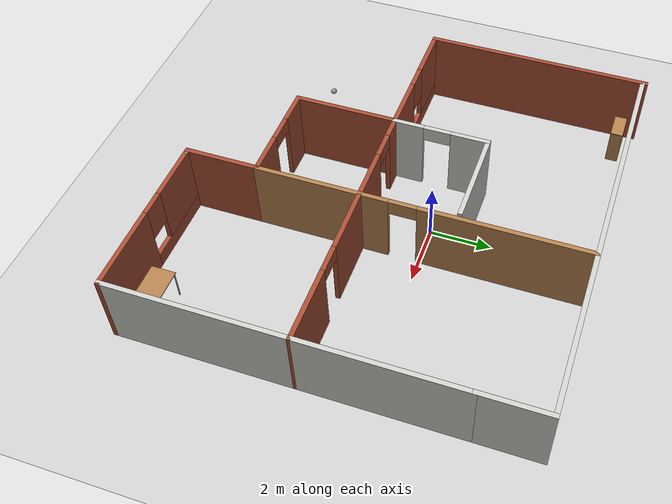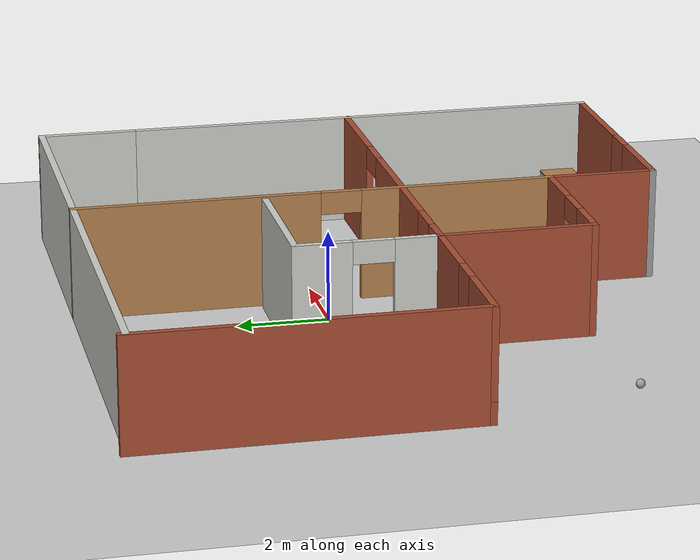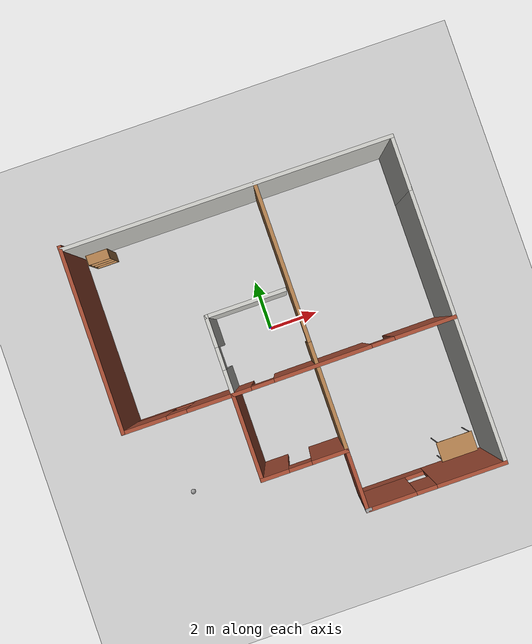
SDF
<sdf version="1.6">
 <world name="default">
  <model name="ground_plane">
   <static>1</static>
   <link name="link">
    <collision name="collision">
     <geometry><plane><normal>0 0 1</normal><size>100 100</size></plane></geometry>
     <surface>
      <contact><collide_bitmask>65535</collide_bitmask></contact>
      <friction><ode><mu>100</mu><mu2>50</mu2></ode></friction>
     </surface>
    </collision>
    <visual name="visual">
     <cast_shadows>0</cast_shadows>
     <geometry><plane><normal>0 0 1</normal><size>100 100</size></plane></geometry>
     <material>
      <script><uri>file://media/materials/scripts/gazebo.material</uri><name>Gazebo/Grey</name></script>
     </material>
    </visual>
   </link>
  </model>
  <model name="Building">
   <pose>0.114366 -1.10553 0 0 -0 0</pose>
   <link name="Wall_0">
    <collision name="Wall_0_Collision">
     <geometry><box><size>13.25 0.15 2.5</size></box></geometry>
     <pose>0 0 1.25 0 -0 0</pose>
    </collision>
    <visual name="Wall_0_Visual">
     <pose>0 0 1.25 0 -0 0</pose>
     <geometry><box><size>13.25 0.15 2.5</size></box></geometry>
     <material>
      <script><uri>file://media/materials/scripts/gazebo.material</uri><name>Gazebo/CeilingTiled</name></script>
      <ambient>0.435294 0.796078 0.67451 1</ambient>
     </material>
     <meta><layer>0</layer></meta>
    </visual>
    <pose>0.024727 6.425 0 0 -0 0</pose>
   </link>
   <link name="Wall_1">
    <collision name="Wall_1_Collision">
     <geometry><box><size>2.25 0.15 2.5</size></box></geometry>
     <pose>0 0 1.25 0 -0 0</pose>
    </collision>
    <visual name="Wall_1_Visual">
     <pose>0 0 1.25 0 -0 0</pose>
     <geometry><box><size>2.25 0.15 2.5</size></box></geometry>
     <material>
      <script><uri>file://media/materials/scripts/gazebo.material</uri><name>Gazebo/CeilingTiled</name></script>
      <ambient>0.760784 0.662745 0.627451 1</ambient>
     </material>
     <meta><layer>0</layer></meta>
    </visual>
    <pose>6.57473 5.375 0 0 0 -1.5708</pose>
   </link>
   <link name="Wall_11">
    <pose>2.17478 -0.799463 0 0 0 -3.13579</pose>
    <visual name="Wall_11_Visual_0">
     <pose>-3.24354 0 1.25 0 -0 0</pose>
     <geometry><box><size>2.46318 0.15 2.5</size></box></geometry>
     <material>
      <script><uri>file://media/materials/scripts/gazebo.material</uri><name>Gazebo/Bricks</name></script>
      <ambient>1 1 1 1</ambient>
     </material>
     <meta><layer>0</layer></meta>
    </visual>
    <collision name="Wall_11_Collision_0">
     <geometry><box><size>2.46318 0.15 2.5</size></box></geometry>
     <pose>-3.24354 0 1.25 0 -0 0</pose>
    </collision>
    <visual name="Wall_11_Visual_1">
     <pose>0.828788 0 1.25 0 -0 0</pose>
     <geometry><box><size>3.88147 0.15 2.5</size></box></geometry>
     <material>
      <script><uri>file://media/materials/scripts/gazebo.material</uri><name>Gazebo/Bricks</name></script>
      <ambient>1 1 1 1</ambient>
     </material>
     <meta><layer>0</layer></meta>
    </visual>
    <collision name="Wall_11_Collision_1">
     <geometry><box><size>3.88147 0.15 2.5</size></box></geometry>
     <pose>0.828788 0 1.25 0 -0 0</pose>
    </collision>
    <visual name="Wall_11_Visual_2">
     <pose>4.07233 0 1.25 0 -0 0</pose>
     <geometry><box><size>0.805607 0.15 2.5</size></box></geometry>
     <material>
      <script><uri>file://media/materials/scripts/gazebo.material</uri><name>Gazebo/Bricks</name></script>
      <ambient>1 1 1 1</ambient>
     </material>
     <meta><layer>0</layer></meta>
    </visual>
    <collision name="Wall_11_Collision_2">
     <geometry><box><size>0.805607 0.15 2.5</size></box></geometry>
     <pose>4.07233 0 1.25 0 -0 0</pose>
    </collision>
    <visual name="Wall_11_Visual_3">
     <pose>-1.56195 0 2.25 0 -0 0</pose>
     <geometry><box><size>0.9 0.15 0.5</size></box></geometry>
     <material>
      <script><uri>file://media/materials/scripts/gazebo.material</uri><name>Gazebo/Bricks</name></script>
      <ambient>1 1 1 1</ambient>
     </material>
     <meta><layer>0</layer></meta>
    </visual>
    <collision name="Wall_11_Collision_3">
     <geometry><box><size>0.9 0.15 0.5</size></box></geometry>
     <pose>-1.56195 0 2.25 0 -0 0</pose>
    </collision>
    <visual name="Wall_11_Visual_4">
     <pose>3.21952 0 2.25 0 -0 0</pose>
     <geometry><box><size>0.9 0.15 0.5</size></box></geometry>
     <material>
      <script><uri>file://media/materials/scripts/gazebo.material</uri><name>Gazebo/Bricks</name></script>
      <ambient>1 1 1 1</ambient>
     </material>
     <meta><layer>0</layer></meta>
    </visual>
    <collision name="Wall_11_Collision_4">
     <geometry><box><size>0.9 0.15 0.5</size></box></geometry>
     <pose>3.21952 0 2.25 0 -0 0</pose>
    </collision>
   </link>
   <link name="Wall_12">
    <pose>-2.22527 0.725 0 0 -0 1.5708</pose>
    <visual name="Wall_12_Visual_0">
     <pose>-1.09587 0 1.25 0 -0 0</pose>
     <geometry><box><size>1.05826 0.15 2.5</size></box></geometry>
     <material>
      <script><uri>file://media/materials/scripts/gazebo.material</uri><name>Gazebo/CeilingTiled</name></script>
      <ambient>1 1 1 1</ambient>
     </material>
     <meta><layer>0</layer></meta>
    </visual>
    <collision name="Wall_12_Collision_0">
     <geometry><box><size>1.05826 0.15 2.5</size></box></geometry>
     <pose>-1.09587 0 1.25 0 -0 0</pose>
    </collision>
    <visual name="Wall_12_Visual_1">
     <pose>0.979128 0 1.25 0 -0 0</pose>
     <geometry><box><size>1.29174 0.15 2.5</size></box></geometry>
     <material>
      <script><uri>file://media/materials/scripts/gazebo.material</uri><name>Gazebo/CeilingTiled</name></script>
      <ambient>1 1 1 1</ambient>
     </material>
     <meta><layer>0</layer></meta>
    </visual>
    <collision name="Wall_12_Collision_1">
     <geometry><box><size>1.29174 0.15 2.5</size></box></geometry>
     <pose>0.979128 0 1.25 0 -0 0</pose>
    </collision>
    <visual name="Wall_12_Visual_2">
     <pose>-0.116744 0 2.25 0 -0 0</pose>
     <geometry><box><size>0.9 0.15 0.5</size></box></geometry>
     <material>
      <script><uri>file://media/materials/scripts/gazebo.material</uri><name>Gazebo/CeilingTiled</name></script>
      <ambient>1 1 1 1</ambient>
     </material>
     <meta><layer>0</layer></meta>
    </visual>
    <collision name="Wall_12_Collision_2">
     <geometry><box><size>0.9 0.15 0.5</size></box></geometry>
     <pose>-0.116744 0 2.25 0 -0 0</pose>
    </collision>
   </link>
   <link name="Wall_13">
    <collision name="Wall_13_Collision">
     <geometry><box><size>3.25 0.15 2.5</size></box></geometry>
     <pose>0 0 1.25 0 -0 0</pose>
    </collision>
    <visual name="Wall_13_Visual">
     <pose>0 0 1.25 0 -0 0</pose>
     <geometry><box><size>3.25 0.15 2.5</size></box></geometry>
     <material>
      <script><uri>file://media/materials/scripts/gazebo.material</uri><name>Gazebo/CeilingTiled</name></script>
      <ambient>1 1 1 1</ambient>
     </material>
     <meta><layer>0</layer></meta>
    </visual>
    <pose>-0.675274 2.275 0 0 -0 0</pose>
   </link>
   <link name="Wall_15">
    <pose>1.12473 1.125 0 0 -0 1.5708</pose>
    <visual name="Wall_15_Visual_0">
     <pose>-3.19342 0 1.25 0 -0 0</pose>
     <geometry><box><size>4.36315 0.15 2.5</size></box></geometry>
     <material>
      <script><uri>file://media/materials/scripts/gazebo.material</uri><name>Gazebo/Wood</name></script>
      <ambient>1 1 1 1</ambient>
     </material>
     <meta><layer>0</layer></meta>
    </visual>
    <collision name="Wall_15_Collision_0">
     <geometry><box><size>4.36315 0.15 2.5</size></box></geometry>
     <pose>-3.19342 0 1.25 0 -0 0</pose>
    </collision>
    <visual name="Wall_15_Visual_1">
     <pose>2.63158 0 1.25 0 -0 0</pose>
     <geometry><box><size>5.48685 0.15 2.5</size></box></geometry>
     <material>
      <script><uri>file://media/materials/scripts/gazebo.material</uri><name>Gazebo/Wood</name></script>
      <ambient>1 1 1 1</ambient>
     </material>
     <meta><layer>0</layer></meta>
    </visual>
    <collision name="Wall_15_Collision_1">
     <geometry><box><size>5.48685 0.15 2.5</size></box></geometry>
     <pose>2.63158 0 1.25 0 -0 0</pose>
    </collision>
    <visual name="Wall_15_Visual_2">
     <pose>-0.561846 0 2.25 0 -0 0</pose>
     <geometry><box><size>0.9 0.15 0.5</size></box></geometry>
     <material>
      <script><uri>file://media/materials/scripts/gazebo.material</uri><name>Gazebo/Wood</name></script>
      <ambient>1 1 1 1</ambient>
     </material>
     <meta><layer>0</layer></meta>
    </visual>
    <collision name="Wall_15_Collision_2">
     <geometry><box><size>0.9 0.15 0.5</size></box></geometry>
     <pose>-0.561846 0 2.25 0 -0 0</pose>
    </collision>
   </link>
   <link name="Wall_2">
    <collision name="Wall_2_Collision">
     <geometry><box><size>11 0.15 2.5</size></box></geometry>
     <pose>0 0 1.25 0 -0 0</pose>
    </collision>
    <visual name="Wall_2_Visual">
     <pose>0 0 1.25 0 -0 0</pose>
     <geometry><box><size>11 0.15 2.5</size></box></geometry>
     <material>
      <script><uri>file://media/materials/scripts/gazebo.material</uri><name>Gazebo/CeilingTiled</name></script>
      <ambient>0.760784 0.662745 0.627451 1</ambient>
     </material>
     <meta><layer>0</layer></meta>
    </visual>
    <pose>6.57473 -1.1 0 0 0 -1.5708</pose>
   </link>
   <link name="Wall_3">
    <pose>3.89973 -6.525 0 0 -0 3.14159</pose>
    <visual name="Wall_3_Visual_0">
     <pose>-1.35798 0 1.25 0 -0 0</pose>
     <geometry><box><size>2.78404 0.15 2.5</size></box></geometry>
     <material>
      <script><uri>file://media/materials/scripts/gazebo.material</uri><name>Gazebo/Bricks</name></script>
      <ambient>1 1 1 1</ambient>
     </material>
     <meta><layer>0</layer></meta>
    </visual>
    <collision name="Wall_3_Collision_0">
     <geometry><box><size>2.78404 0.15 2.5</size></box></geometry>
     <pose>-1.35798 0 1.25 0 -0 0</pose>
    </collision>
    <visual name="Wall_3_Visual_1">
     <pose>1.39202 0 0.25 0 -0 0</pose>
     <geometry><box><size>2.71596 0.15 0.5</size></box></geometry>
     <material>
      <script><uri>file://media/materials/scripts/gazebo.material</uri><name>Gazebo/Bricks</name></script>
      <ambient>1 1 1 1</ambient>
     </material>
     <meta><layer>0</layer></meta>
    </visual>
    <collision name="Wall_3_Collision_1">
     <geometry><box><size>2.71596 0.15 0.5</size></box></geometry>
     <pose>1.39202 0 0.25 0 -0 0</pose>
    </collision>
    <visual name="Wall_3_Visual_2">
     <pose>1.79202 0 1.5 0 -0 0</pose>
     <geometry><box><size>1.91596 0.15 2</size></box></geometry>
     <material>
      <script><uri>file://media/materials/scripts/gazebo.material</uri><name>Gazebo/Bricks</name></script>
      <ambient>1 1 1 1</ambient>
     </material>
     <meta><layer>0</layer></meta>
    </visual>
    <collision name="Wall_3_Collision_2">
     <geometry><box><size>1.91596 0.15 2</size></box></geometry>
     <pose>1.79202 0 1.5 0 -0 0</pose>
    </collision>
    <visual name="Wall_3_Visual_3">
     <pose>0.434036 0 1.9 0 -0 0</pose>
     <geometry><box><size>0.8 0.15 1.2</size></box></geometry>
     <material>
      <script><uri>file://media/materials/scripts/gazebo.material</uri><name>Gazebo/Bricks</name></script>
      <ambient>1 1 1 1</ambient>
     </material>
     <meta><layer>0</layer></meta>
    </visual>
    <collision name="Wall_3_Collision_3">
     <geometry><box><size>0.8 0.15 1.2</size></box></geometry>
     <pose>0.434036 0 1.9 0 -0 0</pose>
    </collision>
   </link>
   <link name="Wall_4">
    <collision name="Wall_4_Collision">
     <geometry><box><size>0.25 0.15 2.5</size></box></geometry>
     <pose>0 0 1.25 0 -0 0</pose>
    </collision>
    <visual name="Wall_4_Visual">
     <pose>0 0 1.25 0 -0 0</pose>
     <geometry><box><size>0.25 0.15 2.5</size></box></geometry>
     <material>
      <script><uri>file://media/materials/scripts/gazebo.material</uri><name>Gazebo/Grey</name></script>
      <ambient>1 1 1 1</ambient>
     </material>
     <meta><layer>0</layer></meta>
    </visual>
    <pose>1.17473 -6.525 0 0 -0 3.14159</pose>
   </link>
   <link name="Wall_5">
    <collision name="Wall_5_Collision">
     <geometry><box><size>2.5 0.15 2.5</size></box></geometry>
     <pose>0 0 1.25 0 -0 0</pose>
    </collision>
    <visual name="Wall_5_Visual">
     <pose>0 0 1.25 0 -0 0</pose>
     <geometry><box><size>2.5 0.15 2.5</size></box></geometry>
     <material>
      <script><uri>file://media/materials/scripts/gazebo.material</uri><name>Gazebo/Bricks</name></script>
      <ambient>1 1 1 1</ambient>
     </material>
     <meta><layer>0</layer></meta>
    </visual>
    <pose>1.12473 -5.35 0 0 -0 1.5708</pose>
   </link>
   <link name="Wall_6">
    <pose>-0.550274 -4.175 0 0 -0 3.14159</pose>
    <visual name="Wall_6_Visual_0">
     <pose>-1.02198 0 1.25 0 -0 0</pose>
     <geometry><box><size>1.45604 0.15 2.5</size></box></geometry>
     <material>
      <script><uri>file://media/materials/scripts/gazebo.material</uri><name>Gazebo/Bricks</name></script>
      <ambient>1 1 1 1</ambient>
     </material>
     <meta><layer>0</layer></meta>
    </visual>
    <collision name="Wall_6_Collision_0">
     <geometry><box><size>1.45604 0.15 2.5</size></box></geometry>
     <pose>-1.02198 0 1.25 0 -0 0</pose>
    </collision>
    <visual name="Wall_6_Visual_1">
     <pose>1.17802 0 1.25 0 -0 0</pose>
     <geometry><box><size>1.14396 0.15 2.5</size></box></geometry>
     <material>
      <script><uri>file://media/materials/scripts/gazebo.material</uri><name>Gazebo/Bricks</name></script>
      <ambient>1 1 1 1</ambient>
     </material>
     <meta><layer>0</layer></meta>
    </visual>
    <collision name="Wall_6_Collision_1">
     <geometry><box><size>1.14396 0.15 2.5</size></box></geometry>
     <pose>1.17802 0 1.25 0 -0 0</pose>
    </collision>
    <visual name="Wall_6_Visual_2">
     <pose>0.156044 0 2.25 0 -0 0</pose>
     <geometry><box><size>0.9 0.15 0.5</size></box></geometry>
     <material>
      <script><uri>file://media/materials/scripts/gazebo.material</uri><name>Gazebo/Bricks</name></script>
      <ambient>1 1 1 1</ambient>
     </material>
     <meta><layer>0</layer></meta>
    </visual>
    <collision name="Wall_6_Collision_2">
     <geometry><box><size>0.9 0.15 0.5</size></box></geometry>
     <pose>0.156044 0 2.25 0 -0 0</pose>
    </collision>
   </link>
   <link name="Wall_7">
    <collision name="Wall_7_Collision">
     <geometry><box><size>3.5 0.15 2.5</size></box></geometry>
     <pose>0 0 1.25 0 -0 0</pose>
    </collision>
    <visual name="Wall_7_Visual">
     <pose>0 0 1.25 0 -0 0</pose>
     <geometry><box><size>3.5 0.15 2.5</size></box></geometry>
     <material>
      <script><uri>file://media/materials/scripts/gazebo.material</uri><name>Gazebo/Bricks</name></script>
      <ambient>1 1 1 1</ambient>
     </material>
     <meta><layer>0</layer></meta>
    </visual>
    <pose>-2.22527 -2.5 0 0 -0 1.5708</pose>
   </link>
   <link name="Wall_8">
    <pose>-4.40027 -0.825 0 0 -0 3.14159</pose>
    <visual name="Wall_8_Visual_0">
     <pose>-1.30021 0 1.25 0 -0 0</pose>
     <geometry><box><size>1.89958 0.15 2.5</size></box></geometry>
     <material>
      <script><uri>file://media/materials/scripts/gazebo.material</uri><name>Gazebo/Bricks</name></script>
      <ambient>1 1 1 1</ambient>
     </material>
     <meta><layer>0</layer></meta>
    </visual>
    <collision name="Wall_8_Collision_0">
     <geometry><box><size>1.89958 0.15 2.5</size></box></geometry>
     <pose>-1.30021 0 1.25 0 -0 0</pose>
    </collision>
    <visual name="Wall_8_Visual_1">
     <pose>0.949788 0 0.25 0 -0 0</pose>
     <geometry><box><size>2.60042 0.15 0.5</size></box></geometry>
     <material>
      <script><uri>file://media/materials/scripts/gazebo.material</uri><name>Gazebo/Bricks</name></script>
      <ambient>1 1 1 1</ambient>
     </material>
     <meta><layer>0</layer></meta>
    </visual>
    <collision name="Wall_8_Collision_1">
     <geometry><box><size>2.60042 0.15 0.5</size></box></geometry>
     <pose>0.949788 0 0.25 0 -0 0</pose>
    </collision>
    <visual name="Wall_8_Visual_2">
     <pose>1.34979 0 1.5 0 -0 0</pose>
     <geometry><box><size>1.80042 0.15 2</size></box></geometry>
     <material>
      <script><uri>file://media/materials/scripts/gazebo.material</uri><name>Gazebo/Bricks</name></script>
      <ambient>1 1 1 1</ambient>
     </material>
     <meta><layer>0</layer></meta>
    </visual>
    <collision name="Wall_8_Collision_2">
     <geometry><box><size>1.80042 0.15 2</size></box></geometry>
     <pose>1.34979 0 1.5 0 -0 0</pose>
    </collision>
    <visual name="Wall_8_Visual_3">
     <pose>0.049577 0 1.9 0 -0 0</pose>
     <geometry><box><size>0.8 0.15 1.2</size></box></geometry>
     <material>
      <script><uri>file://media/materials/scripts/gazebo.material</uri><name>Gazebo/Bricks</name></script>
      <ambient>1 1 1 1</ambient>
     </material>
     <meta><layer>0</layer></meta>
    </visual>
    <collision name="Wall_8_Collision_3">
     <geometry><box><size>0.8 0.15 1.2</size></box></geometry>
     <pose>0.049577 0 1.9 0 -0 0</pose>
    </collision>
   </link>
   <link name="Wall_9">
    <collision name="Wall_9_Collision">
     <geometry><box><size>7.5 0.15 2.5</size></box></geometry>
     <pose>0 0 1.25 0 -0 0</pose>
    </collision>
    <visual name="Wall_9_Visual">
     <pose>0 0 1.25 0 -0 0</pose>
     <geometry><box><size>7.5 0.15 2.5</size></box></geometry>
     <material>
      <script><uri>file://media/materials/scripts/gazebo.material</uri><name>Gazebo/Bricks</name></script>
      <ambient>1 1 1 1</ambient>
     </material>
     <meta><layer>0</layer></meta>
    </visual>
    <pose>-6.57527 2.85 0 0 -0 1.5708</pose>
   </link>
   <static>1</static>
  </model>
  <model name="bookshelf">
   <static>1</static>
   <link name="link">
    <inertial><mass>1</mass></inertial>
    <collision name="back">
     <pose>0 0.005 0.6 0 -0 0</pose>
     <geometry><box><size>0.9 0.01 1.2</size></box></geometry>
    </collision>
    <visual name="visual1">
     <pose>0 0.005 0.6 0 -0 0</pose>
     <geometry><box><size>0.9 0.01 1.2</size></box></geometry>
     <material>
      <script><uri>file://media/materials/scripts/gazebo.material</uri><name>Gazebo/Wood</name></script>
     </material>
    </visual>
    <collision name="left_side">
     <pose>0.45 -0.195 0.6 0 -0 0</pose>
     <geometry><box><size>0.02 0.4 1.2</size></box></geometry>
    </collision>
    <visual name="visual2">
     <pose>0.45 -0.195 0.6 0 -0 0</pose>
     <geometry><box><size>0.02 0.4 1.2</size></box></geometry>
     <material>
      <script><uri>file://media/materials/scripts/gazebo.material</uri><name>Gazebo/Wood</name></script>
     </material>
    </visual>
    <collision name="right_side">
     <pose>-0.45 -0.195 0.6 0 -0 0</pose>
     <geometry><box><size>0.02 0.4 1.2</size></box></geometry>
    </collision>
    <visual name="visual3">
     <pose>-0.45 -0.195 0.6 0 -0 0</pose>
     <geometry><box><size>0.02 0.4 1.2</size></box></geometry>
     <material>
      <script><uri>file://media/materials/scripts/gazebo.material</uri><name>Gazebo/Wood</name></script>
     </material>
    </visual>
    <collision name="bottom">
     <pose>0 -0.195 0.03 0 -0 0</pose>
     <geometry><box><size>0.88 0.4 0.06</size></box></geometry>
    </collision>
    <visual name="visual4">
     <pose>0 -0.195 0.03 0 -0 0</pose>
     <geometry><box><size>0.88 0.4 0.06</size></box></geometry>
     <material>
      <script><uri>file://media/materials/scripts/gazebo.material</uri><name>Gazebo/Wood</name></script>
     </material>
    </visual>
    <collision name="top">
     <pose>0 -0.195 1.19 0 -0 0</pose>
     <geometry><box><size>0.88 0.4 0.02</size></box></geometry>
    </collision>
    <visual name="visual5">
     <pose>0 -0.195 1.19 0 -0 0</pose>
     <geometry><box><size>0.88 0.4 0.02</size></box></geometry>
     <material>
      <script><uri>file://media/materials/scripts/gazebo.material</uri><name>Gazebo/Wood</name></script>
     </material>
    </visual>
    <collision name="low_shelf">
     <pose>0 -0.195 0.43 0 -0 0</pose>
     <geometry><box><size>0.88 0.4 0.02</size></box></geometry>
    </collision>
    <visual name="visual6">
     <pose>0 -0.195 0.43 0 -0 0</pose>
     <geometry><box><size>0.88 0.4 0.02</size></box></geometry>
     <material>
      <script><uri>file://media/materials/scripts/gazebo.material</uri><name>Gazebo/Wood</name></script>
     </material>
    </visual>
    <collision name="high_shelf">
     <pose>0 -0.195 0.8 0 -0 0</pose>
     <geometry><box><size>0.88 0.4 0.02</size></box></geometry>
    </collision>
    <visual name="visual7">
     <pose>0 -0.195 0.8 0 -0 0</pose>
     <geometry><box><size>0.88 0.4 0.02</size></box></geometry>
     <material>
      <script><uri>file://media/materials/scripts/gazebo.material</uri><name>Gazebo/Wood</name></script>
     </material>
    </visual>
   </link>
   <pose>-5.57127 5.10435 0 0 -0 0</pose>
  </model>
  <model name="table">
   <static>1</static>
   <link name="link">
    <collision name="surface">
     <pose>0 0 1 0 -0 0</pose>
     <geometry><box><size>1.5 0.8 0.03</size></box></geometry>
     <surface><friction><ode><mu>0.6</mu><mu2>0.6</mu2></ode></friction></surface>
    </collision>
    <visual name="visual1">
     <pose>0 0 1 0 -0 0</pose>
     <geometry><box><size>1.5 0.8 0.03</size></box></geometry>
     <material>
      <script><uri>file://media/materials/scripts/gazebo.material</uri><name>Gazebo/Wood</name></script>
     </material>
    </visual>
    <collision name="front_left_leg">
     <pose>0.68 0.38 0.5 0 -0 0</pose>
     <geometry><cylinder><radius>0.02</radius><length>1</length></cylinder></geometry>
    </collision>
    <visual name="front_left_leg">
     <pose>0.68 0.38 0.5 0 -0 0</pose>
     <geometry><cylinder><radius>0.02</radius><length>1</length></cylinder></geometry>
     <material>
      <script><uri>file://media/materials/scripts/gazebo.material</uri><name>Gazebo/Grey</name></script>
     </material>
    </visual>
    <collision name="front_right_leg">
     <pose>0.68 -0.38 0.5 0 -0 0</pose>
     <geometry><cylinder><radius>0.02</radius><length>1</length></cylinder></geometry>
    </collision>
    <visual name="front_right_leg">
     <pose>0.68 -0.38 0.5 0 -0 0</pose>
     <geometry><cylinder><radius>0.02</radius><length>1</length></cylinder></geometry>
     <material>
      <script><uri>file://media/materials/scripts/gazebo.material</uri><name>Gazebo/Grey</name></script>
     </material>
    </visual>
    <collision name="back_right_leg">
     <pose>-0.68 -0.38 0.5 0 -0 0</pose>
     <geometry><cylinder><radius>0.02</radius><length>1</length></cylinder></geometry>
    </collision>
    <visual name="back_right_leg">
     <pose>-0.68 -0.38 0.5 0 -0 0</pose>
     <geometry><cylinder><radius>0.02</radius><length>1</length></cylinder></geometry>
     <material>
      <script><uri>file://media/materials/scripts/gazebo.material</uri><name>Gazebo/Grey</name></script>
     </material>
    </visual>
    <collision name="back_left_leg">
     <pose>-0.68 0.38 0.5 0 -0 0</pose>
     <geometry><cylinder><radius>0.02</radius><length>1</length></cylinder></geometry>
    </collision>
    <visual name="back_left_leg">
     <pose>-0.68 0.38 0.5 0 -0 0</pose>
     <geometry><cylinder><radius>0.02</radius><length>1</length></cylinder></geometry>
     <material>
      <script><uri>file://media/materials/scripts/gazebo.material</uri><name>Gazebo/Grey</name></script>
     </material>
    </visual>
   </link>
   <pose>5.50242 -6.90734 0 0 -0 0</pose>
  </model>
  <model name="my_ball">
   <link name="link_0">
    <inertial>
     <mass>1</mass>
     <inertia><ixx>0.1</ixx><ixy>0</ixy><ixz>0</ixz><iyy>0.1</iyy><iyz>0</iyz><izz>0.1</izz></inertia>
    </inertial>
    <visual name="visual">
     <geometry><sphere><radius>0.1</radius></sphere></geometry>
     <material>
      <lighting>1</lighting>
      <script><uri>file://media/materials/scripts/gazebo.material</uri><name>Gazebo/Grey</name></script>
      <shader type="pixel"><normal_map>__default__</normal_map></shader>
      <ambient>1 1 1 1</ambient>
      <diffuse>1 1 1 1</diffuse>
      <specular>1 1 1 1</specular>
      <emissive>1 1 1 1</emissive>
     </material>
    </visual>
    <collision name="collision">
     <geometry><sphere><radius>0.1</radius></sphere></geometry>
     <surface>
      <friction>
       <ode><mu>1</mu><mu2>1</mu2><fdir1>0 0 0</fdir1><slip1>0</slip1><slip2>0</slip2></ode>
       <torsional>
        <coefficient>1</coefficient>
        <patch_radius>0</patch_radius>
        <surface_radius>0</surface_radius>
        <use_patch_radius>1</use_patch_radius>
        <ode><slip>0</slip></ode>
       </torsional>
      </friction>
      <bounce><restitution_coefficient>0</restitution_coefficient><threshold>1e+06</threshold></bounce>
      <contact>
       <collide_without_contact>0</collide_without_contact>
       <collide_without_contact_bitmask>1</collide_without_contact_bitmask>
       <collide_bitmask>1</collide_bitmask>
       <ode>
        <soft_cfm>0</soft_cfm>
        <soft_erp>0.2</soft_erp>
        <kp>1e+13</kp>
        <kd>1</kd>
        <max_vel>0.01</max_vel>
        <min_depth>0</min_depth>
       </ode>
       <bullet>
        <split_impulse>1</split_impulse>
        <split_impulse_penetration_threshold>-0.01</split_impulse_penetration_threshold>
        <soft_cfm>0</soft_cfm>
        <soft_erp>0.2</soft_erp>
        <kp>1e+13</kp>
        <kd>1</kd>
       </bullet>
      </contact>
     </surface>
    </collision>
   </link>
   <static>0</static>
   <pose>-5.2536 -5.36361 0.1 0 -0 0</pose>
  </model>
 </world>
</sdf>
